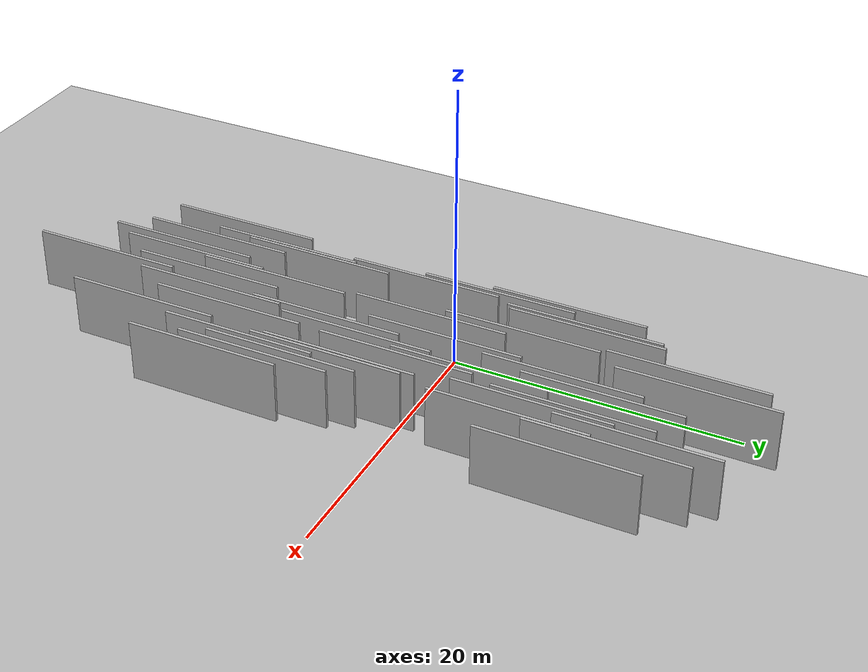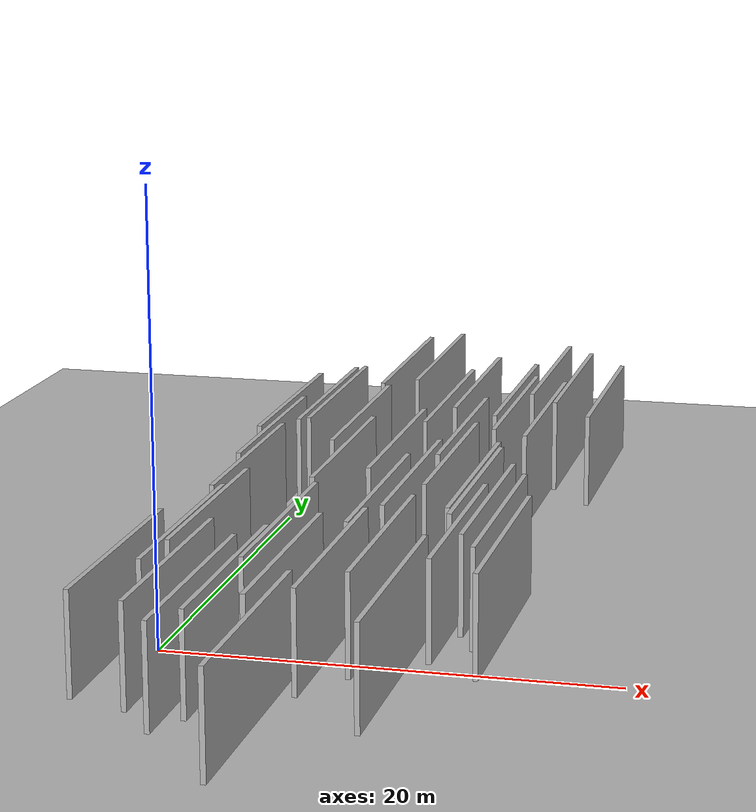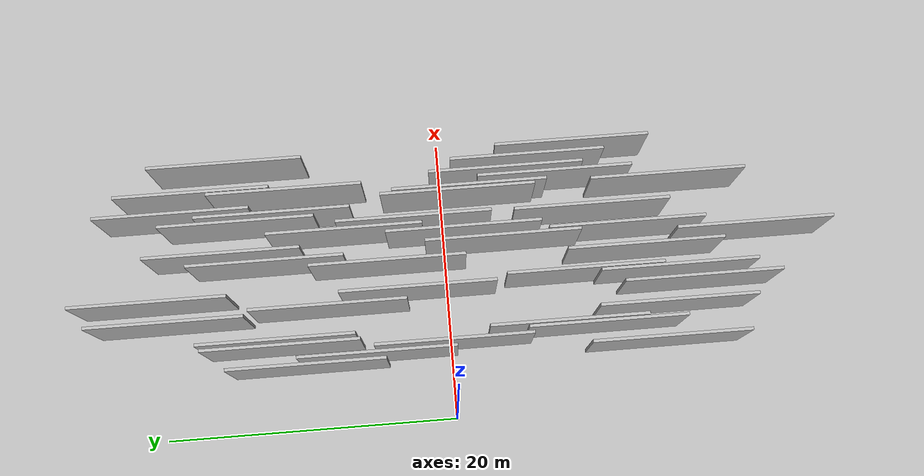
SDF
<?xml version="1.0" encoding="utf-8"?>

<sdf version="1.6">

   <world name="default">

      <gui fullscreen="0">

         <camera name="user_camera">

            <pose>-15 0 4.57585 0 0 0</pose>

            <view_controller>orbit</view_controller>

         </camera>

      </gui>

      <scene>

         <sky>

           <clouds>

             <speed>12</speed>

           </clouds>

         </sky>

         <ambient>0.4 0.4 0.4 1</ambient>

         <background>0.7 0.7 0.7 1</background>

         <shadows>1</shadows>

      </scene>

      <gravity>0 0 -9.8066</gravity>

      <magnetic_field>6e-06 2.3e-05 -4.2e-05</magnetic_field>

      <physics default="0" name="default_physics" type="ode">

         <ode>

            <solver>

               <type>quick</type>

               <iters>10</iters>

               <sor>1.0</sor>

               <use_dynamic_moi_rescaling>0</use_dynamic_moi_rescaling>

            </solver>

            <constraints>

               <cfm>0</cfm>

               <erp>0.2</erp>

               <contact_max_correcting_vel>100</contact_max_correcting_vel>

               <contact_surface_layer>0.001</contact_surface_layer>

            </constraints>

         </ode>

         <max_step_size>0.004</max_step_size>

         <real_time_factor>1</real_time_factor>

         <real_time_update_rate>250</real_time_update_rate>

      </physics>

      <light name="sun" type="directional">

         <cast_shadows>1</cast_shadows>

         <pose>0 0 10 0 0 0</pose>

         <diffuse>0.8 0.8 0.8 1</diffuse>

         <specular>0.2 0.2 0.2 1</specular>

         <attenuation>

            <range>1000</range>

            <constant>0.9</constant>

            <linear>0.01</linear>

            <quadratic>0.001</quadratic>

         </attenuation>

         <direction>-0.5 0.1 -0.9</direction>

      </light>

      <include>

         <name>ground_plane_1</name>

         <uri>model://HANNAS_ground_plane</uri>

         <pose>0 0 0  0 0 0</pose>

      </include>

      <include>

         <name>ground_plane_2</name>

         <uri>model://HANNAS_ground_plane</uri>

         <pose>100 0 0  0 0 0</pose>

      </include>

      <model name="HANNAS_wall_1">

         <static>1</static>

         <pose frame="">9.5534 3.7458 5.0 0.000000 0.000000 1.570796</pose>

         <link name="link">

            <pose frame="">0 0 2.00 0 0 0</pose>

            <collision name="collision">

               <geometry>

                  <box>

                     <size>10.00 0.2 4.00</size>

                  </box>

               </geometry>

               <max_contacts>10</max_contacts>

               <surface>

                  <contact>

                     <ode/>

                  </contact>

                  <bounce/>

                  <friction>

                     <torsional>

                        <ode/>

                     </torsional>

                     <ode/>

                  </friction>

               </surface>

            </collision>

            <visual name="visual">

               <cast_shadows>0</cast_shadows>

               <geometry>

                  <box>

                     <size>10.00 0.2 4.00</size>

                  </box>

               </geometry>

               <material>

                  <script>

                     <uri>model://HANNAS_wall/materials/scripts</uri>

                     <uri>model://HANNAS_wall/materials/textures</uri>

                     <name>vrc/HANNAS_wall</name>

                  </script>

               </material>

            </visual>

            <self_collide>0</self_collide>

            <enable_wind>0</enable_wind>

            <kinematic>0</kinematic>

         </link>

      </model>

      <model name="HANNAS_wall_2">

         <static>1</static>

         <pose frame="">4.1947 -0.1144 5.0 0.000000 0.000000 1.570796</pose>

         <link name="link">

            <pose frame="">0 0 2.00 0 0 0</pose>

            <collision name="collision">

               <geometry>

                  <box>

                     <size>10.00 0.2 4.00</size>

                  </box>

               </geometry>

               <max_contacts>10</max_contacts>

               <surface>

                  <contact>

                     <ode/>

                  </contact>

                  <bounce/>

                  <friction>

                     <torsional>

                        <ode/>

                     </torsional>

                     <ode/>

                  </friction>

               </surface>

            </collision>

            <visual name="visual">

               <cast_shadows>0</cast_shadows>

               <geometry>

                  <box>

                     <size>10.00 0.2 4.00</size>

                  </box>

               </geometry>

               <material>

                  <script>

                     <uri>model://HANNAS_wall/materials/scripts</uri>

                     <uri>model://HANNAS_wall/materials/textures</uri>

                     <name>vrc/HANNAS_wall</name>

                  </script>

               </material>

            </visual>

            <self_collide>0</self_collide>

            <enable_wind>0</enable_wind>

            <kinematic>0</kinematic>

         </link>

      </model>

      <model name="HANNAS_wall_3">

         <static>1</static>

         <pose frame="">13.8766 -14.6473 5.0 0.000000 0.000000 1.570796</pose>

         <link name="link">

            <pose frame="">0 0 2.00 0 0 0</pose>

            <collision name="collision">

               <geometry>

                  <box>

                     <size>10.00 0.2 4.00</size>

                  </box>

               </geometry>

               <max_contacts>10</max_contacts>

               <surface>

                  <contact>

                     <ode/>

                  </contact>

                  <bounce/>

                  <friction>

                     <torsional>

                        <ode/>

                     </torsional>

                     <ode/>

                  </friction>

               </surface>

            </collision>

            <visual name="visual">

               <cast_shadows>0</cast_shadows>

               <geometry>

                  <box>

                     <size>10.00 0.2 4.00</size>

                  </box>

               </geometry>

               <material>

                  <script>

                     <uri>model://HANNAS_wall/materials/scripts</uri>

                     <uri>model://HANNAS_wall/materials/textures</uri>

                     <name>vrc/HANNAS_wall</name>

                  </script>

               </material>

            </visual>

            <self_collide>0</self_collide>

            <enable_wind>0</enable_wind>

            <kinematic>0</kinematic>

         </link>

      </model>

      <model name="HANNAS_wall_4">

         <static>1</static>

         <pose frame="">12.8027 13.2292 5.0 0.000000 0.000000 1.570796</pose>

         <link name="link">

            <pose frame="">0 0 2.00 0 0 0</pose>

            <collision name="collision">

               <geometry>

                  <box>

                     <size>10.00 0.2 4.00</size>

                  </box>

               </geometry>

               <max_contacts>10</max_contacts>

               <surface>

                  <contact>

                     <ode/>

                  </contact>

                  <bounce/>

                  <friction>

                     <torsional>

                        <ode/>

                     </torsional>

                     <ode/>

                  </friction>

               </surface>

            </collision>

            <visual name="visual">

               <cast_shadows>0</cast_shadows>

               <geometry>

                  <box>

                     <size>10.00 0.2 4.00</size>

                  </box>

               </geometry>

               <material>

                  <script>

                     <uri>model://HANNAS_wall/materials/scripts</uri>

                     <uri>model://HANNAS_wall/materials/textures</uri>

                     <name>vrc/HANNAS_wall</name>

                  </script>

               </material>

            </visual>

            <self_collide>0</self_collide>

            <enable_wind>0</enable_wind>

            <kinematic>0</kinematic>

         </link>

      </model>

      <model name="HANNAS_wall_5">

         <static>1</static>

         <pose frame="">10.1841 -19.8074 5.0 0.000000 0.000000 1.570796</pose>

         <link name="link">

            <pose frame="">0 0 2.00 0 0 0</pose>

            <collision name="collision">

               <geometry>

                  <box>

                     <size>10.00 0.2 4.00</size>

                  </box>

               </geometry>

               <max_contacts>10</max_contacts>

               <surface>

                  <contact>

                     <ode/>

                  </contact>

                  <bounce/>

                  <friction>

                     <torsional>

                        <ode/>

                     </torsional>

                     <ode/>

                  </friction>

               </surface>

            </collision>

            <visual name="visual">

               <cast_shadows>0</cast_shadows>

               <geometry>

                  <box>

                     <size>10.00 0.2 4.00</size>

                  </box>

               </geometry>

               <material>

                  <script>

                     <uri>model://HANNAS_wall/materials/scripts</uri>

                     <uri>model://HANNAS_wall/materials/textures</uri>

                     <name>vrc/HANNAS_wall</name>

                  </script>

               </material>

            </visual>

            <self_collide>0</self_collide>

            <enable_wind>0</enable_wind>

            <kinematic>0</kinematic>

         </link>

      </model>

      <model name="HANNAS_wall_6">

         <static>1</static>

         <pose frame="">7.9940 18.9209 5.0 0.000000 0.000000 1.570796</pose>

         <link name="link">

            <pose frame="">0 0 2.00 0 0 0</pose>

            <collision name="collision">

               <geometry>

                  <box>

                     <size>10.00 0.2 4.00</size>

                  </box>

               </geometry>

               <max_contacts>10</max_contacts>

               <surface>

                  <contact>

                     <ode/>

                  </contact>

                  <bounce/>

                  <friction>

                     <torsional>

                        <ode/>

                     </torsional>

                     <ode/>

                  </friction>

               </surface>

            </collision>

            <visual name="visual">

               <cast_shadows>0</cast_shadows>

               <geometry>

                  <box>

                     <size>10.00 0.2 4.00</size>

                  </box>

               </geometry>

               <material>

                  <script>

                     <uri>model://HANNAS_wall/materials/scripts</uri>

                     <uri>model://HANNAS_wall/materials/textures</uri>

                     <name>vrc/HANNAS_wall</name>

                  </script>

               </material>

            </visual>

            <self_collide>0</self_collide>

            <enable_wind>0</enable_wind>

            <kinematic>0</kinematic>

         </link>

      </model>

      <model name="HANNAS_wall_7">

         <static>1</static>

         <pose frame="">5.0252 10.9906 5.0 0.000000 0.000000 1.570796</pose>

         <link name="link">

            <pose frame="">0 0 2.00 0 0 0</pose>

            <collision name="collision">

               <geometry>

                  <box>

                     <size>10.00 0.2 4.00</size>

                  </box>

               </geometry>

               <max_contacts>10</max_contacts>

               <surface>

                  <contact>

                     <ode/>

                  </contact>

                  <bounce/>

                  <friction>

                     <torsional>

                        <ode/>

                     </torsional>

                     <ode/>

                  </friction>

               </surface>

            </collision>

            <visual name="visual">

               <cast_shadows>0</cast_shadows>

               <geometry>

                  <box>

                     <size>10.00 0.2 4.00</size>

                  </box>

               </geometry>

               <material>

                  <script>

                     <uri>model://HANNAS_wall/materials/scripts</uri>

                     <uri>model://HANNAS_wall/materials/textures</uri>

                     <name>vrc/HANNAS_wall</name>

                  </script>

               </material>

            </visual>

            <self_collide>0</self_collide>

            <enable_wind>0</enable_wind>

            <kinematic>0</kinematic>

         </link>

      </model>

      <model name="HANNAS_wall_8">

         <static>1</static>

         <pose frame="">8.0537 -8.7369 5.0 0.000000 0.000000 1.570796</pose>

         <link name="link">

            <pose frame="">0 0 2.00 0 0 0</pose>

            <collision name="collision">

               <geometry>

                  <box>

                     <size>10.00 0.2 4.00</size>

                  </box>

               </geometry>

               <max_contacts>10</max_contacts>

               <surface>

                  <contact>

                     <ode/>

                  </contact>

                  <bounce/>

                  <friction>

                     <torsional>

                        <ode/>

                     </torsional>

                     <ode/>

                  </friction>

               </surface>

            </collision>

            <visual name="visual">

               <cast_shadows>0</cast_shadows>

               <geometry>

                  <box>

                     <size>10.00 0.2 4.00</size>

                  </box>

               </geometry>

               <material>

                  <script>

                     <uri>model://HANNAS_wall/materials/scripts</uri>

                     <uri>model://HANNAS_wall/materials/textures</uri>

                     <name>vrc/HANNAS_wall</name>

                  </script>

               </material>

            </visual>

            <self_collide>0</self_collide>

            <enable_wind>0</enable_wind>

            <kinematic>0</kinematic>

         </link>

      </model>

      <model name="HANNAS_wall_9">

         <static>1</static>

         <pose frame="">10.6077 -3.7105 5.0 0.000000 0.000000 1.570796</pose>

         <link name="link">

            <pose frame="">0 0 2.00 0 0 0</pose>

            <collision name="collision">

               <geometry>

                  <box>

                     <size>10.00 0.2 4.00</size>

                  </box>

               </geometry>

               <max_contacts>10</max_contacts>

               <surface>

                  <contact>

                     <ode/>

                  </contact>

                  <bounce/>

                  <friction>

                     <torsional>

                        <ode/>

                     </torsional>

                     <ode/>

                  </friction>

               </surface>

            </collision>

            <visual name="visual">

               <cast_shadows>0</cast_shadows>

               <geometry>

                  <box>

                     <size>10.00 0.2 4.00</size>

                  </box>

               </geometry>

               <material>

                  <script>

                     <uri>model://HANNAS_wall/materials/scripts</uri>

                     <uri>model://HANNAS_wall/materials/textures</uri>

                     <name>vrc/HANNAS_wall</name>

                  </script>

               </material>

            </visual>

            <self_collide>0</self_collide>

            <enable_wind>0</enable_wind>

            <kinematic>0</kinematic>

         </link>

      </model>

      <model name="HANNAS_wall_10">

         <static>1</static>

         <pose frame="">15.8843 -5.7240 5.0 0.000000 0.000000 1.570796</pose>

         <link name="link">

            <pose frame="">0 0 2.00 0 0 0</pose>

            <collision name="collision">

               <geometry>

                  <box>

                     <size>10.00 0.2 4.00</size>

                  </box>

               </geometry>

               <max_contacts>10</max_contacts>

               <surface>

                  <contact>

                     <ode/>

                  </contact>

                  <bounce/>

                  <friction>

                     <torsional>

                        <ode/>

                     </torsional>

                     <ode/>

                  </friction>

               </surface>

            </collision>

            <visual name="visual">

               <cast_shadows>0</cast_shadows>

               <geometry>

                  <box>

                     <size>10.00 0.2 4.00</size>

                  </box>

               </geometry>

               <material>

                  <script>

                     <uri>model://HANNAS_wall/materials/scripts</uri>

                     <uri>model://HANNAS_wall/materials/textures</uri>

                     <name>vrc/HANNAS_wall</name>

                  </script>

               </material>

            </visual>

            <self_collide>0</self_collide>

            <enable_wind>0</enable_wind>

            <kinematic>0</kinematic>

         </link>

      </model>

      <model name="HANNAS_wall_11">

         <static>1</static>

         <pose frame="">4.5751 -9.7966 5.0 0.000000 0.000000 1.570796</pose>

         <link name="link">

            <pose frame="">0 0 2.00 0 0 0</pose>

            <collision name="collision">

               <geometry>

                  <box>

                     <size>10.00 0.2 4.00</size>

                  </box>

               </geometry>

               <max_contacts>10</max_contacts>

               <surface>

                  <contact>

                     <ode/>

                  </contact>

                  <bounce/>

                  <friction>

                     <torsional>

                        <ode/>

                     </torsional>

                     <ode/>

                  </friction>

               </surface>

            </collision>

            <visual name="visual">

               <cast_shadows>0</cast_shadows>

               <geometry>

                  <box>

                     <size>10.00 0.2 4.00</size>

                  </box>

               </geometry>

               <material>

                  <script>

                     <uri>model://HANNAS_wall/materials/scripts</uri>

                     <uri>model://HANNAS_wall/materials/textures</uri>

                     <name>vrc/HANNAS_wall</name>

                  </script>

               </material>

            </visual>

            <self_collide>0</self_collide>

            <enable_wind>0</enable_wind>

            <kinematic>0</kinematic>

         </link>

      </model>

      <model name="HANNAS_wall_12">

         <static>1</static>

         <pose frame="">11.8149 6.3750 5.0 0.000000 0.000000 1.570796</pose>

         <link name="link">

            <pose frame="">0 0 2.00 0 0 0</pose>

            <collision name="collision">

               <geometry>

                  <box>

                     <size>10.00 0.2 4.00</size>

                  </box>

               </geometry>

               <max_contacts>10</max_contacts>

               <surface>

                  <contact>

                     <ode/>

                  </contact>

                  <bounce/>

                  <friction>

                     <torsional>

                        <ode/>

                     </torsional>

                     <ode/>

                  </friction>

               </surface>

            </collision>

            <visual name="visual">

               <cast_shadows>0</cast_shadows>

               <geometry>

                  <box>

                     <size>10.00 0.2 4.00</size>

                  </box>

               </geometry>

               <material>

                  <script>

                     <uri>model://HANNAS_wall/materials/scripts</uri>

                     <uri>model://HANNAS_wall/materials/textures</uri>

                     <name>vrc/HANNAS_wall</name>

                  </script>

               </material>

            </visual>

            <self_collide>0</self_collide>

            <enable_wind>0</enable_wind>

            <kinematic>0</kinematic>

         </link>

      </model>

      <model name="HANNAS_wall_13">

         <static>1</static>

         <pose frame="">12.2976 1.8911 5.0 0.000000 0.000000 1.570796</pose>

         <link name="link">

            <pose frame="">0 0 2.00 0 0 0</pose>

            <collision name="collision">

               <geometry>

                  <box>

                     <size>10.00 0.2 4.00</size>

                  </box>

               </geometry>

               <max_contacts>10</max_contacts>

               <surface>

                  <contact>

                     <ode/>

                  </contact>

                  <bounce/>

                  <friction>

                     <torsional>

                        <ode/>

                     </torsional>

                     <ode/>

                  </friction>

               </surface>

            </collision>

            <visual name="visual">

               <cast_shadows>0</cast_shadows>

               <geometry>

                  <box>

                     <size>10.00 0.2 4.00</size>

                  </box>

               </geometry>

               <material>

                  <script>

                     <uri>model://HANNAS_wall/materials/scripts</uri>

                     <uri>model://HANNAS_wall/materials/textures</uri>

                     <name>vrc/HANNAS_wall</name>

                  </script>

               </material>

            </visual>

            <self_collide>0</self_collide>

            <enable_wind>0</enable_wind>

            <kinematic>0</kinematic>

         </link>

      </model>

      <model name="HANNAS_wall_14">

         <static>1</static>

         <pose frame="">7.0033 -16.1075 5.0 0.000000 0.000000 1.570796</pose>

         <link name="link">

            <pose frame="">0 0 2.00 0 0 0</pose>

            <collision name="collision">

               <geometry>

                  <box>

                     <size>10.00 0.2 4.00</size>

                  </box>

               </geometry>

               <max_contacts>10</max_contacts>

               <surface>

                  <contact>

                     <ode/>

                  </contact>

                  <bounce/>

                  <friction>

                     <torsional>

                        <ode/>

                     </torsional>

                     <ode/>

                  </friction>

               </surface>

            </collision>

            <visual name="visual">

               <cast_shadows>0</cast_shadows>

               <geometry>

                  <box>

                     <size>10.00 0.2 4.00</size>

                  </box>

               </geometry>

               <material>

                  <script>

                     <uri>model://HANNAS_wall/materials/scripts</uri>

                     <uri>model://HANNAS_wall/materials/textures</uri>

                     <name>vrc/HANNAS_wall</name>

                  </script>

               </material>

            </visual>

            <self_collide>0</self_collide>

            <enable_wind>0</enable_wind>

            <kinematic>0</kinematic>

         </link>

      </model>

      <model name="HANNAS_wall_15">

         <static>1</static>

         <pose frame="">14.6371 -7.3992 5.0 0.000000 0.000000 1.570796</pose>

         <link name="link">

            <pose frame="">0 0 2.00 0 0 0</pose>

            <collision name="collision">

               <geometry>

                  <box>

                     <size>10.00 0.2 4.00</size>

                  </box>

               </geometry>

               <max_contacts>10</max_contacts>

               <surface>

                  <contact>

                     <ode/>

                  </contact>

                  <bounce/>

                  <friction>

                     <torsional>

                        <ode/>

                     </torsional>

                     <ode/>

                  </friction>

               </surface>

            </collision>

            <visual name="visual">

               <cast_shadows>0</cast_shadows>

               <geometry>

                  <box>

                     <size>10.00 0.2 4.00</size>

                  </box>

               </geometry>

               <material>

                  <script>

                     <uri>model://HANNAS_wall/materials/scripts</uri>

                     <uri>model://HANNAS_wall/materials/textures</uri>

                     <name>vrc/HANNAS_wall</name>

                  </script>

               </material>

            </visual>

            <self_collide>0</self_collide>

            <enable_wind>0</enable_wind>

            <kinematic>0</kinematic>

         </link>

      </model>

      <model name="HANNAS_wall_16">

         <static>1</static>

         <pose frame="">11.3830 -1.2493 5.0 0.000000 0.000000 1.570796</pose>

         <link name="link">

            <pose frame="">0 0 2.00 0 0 0</pose>

            <collision name="collision">

               <geometry>

                  <box>

                     <size>10.00 0.2 4.00</size>

                  </box>

               </geometry>

               <max_contacts>10</max_contacts>

               <surface>

                  <contact>

                     <ode/>

                  </contact>

                  <bounce/>

                  <friction>

                     <torsional>

                        <ode/>

                     </torsional>

                     <ode/>

                  </friction>

               </surface>

            </collision>

            <visual name="visual">

               <cast_shadows>0</cast_shadows>

               <geometry>

                  <box>

                     <size>10.00 0.2 4.00</size>

                  </box>

               </geometry>

               <material>

                  <script>

                     <uri>model://HANNAS_wall/materials/scripts</uri>

                     <uri>model://HANNAS_wall/materials/textures</uri>

                     <name>vrc/HANNAS_wall</name>

                  </script>

               </material>

            </visual>

            <self_collide>0</self_collide>

            <enable_wind>0</enable_wind>

            <kinematic>0</kinematic>

         </link>

      </model>

      <model name="HANNAS_wall_17">

         <static>1</static>

         <pose frame="">12.2150 -9.5600 5.0 0.000000 0.000000 1.570796</pose>

         <link name="link">

            <pose frame="">0 0 2.00 0 0 0</pose>

            <collision name="collision">

               <geometry>

                  <box>

                     <size>10.00 0.2 4.00</size>

                  </box>

               </geometry>

               <max_contacts>10</max_contacts>

               <surface>

                  <contact>

                     <ode/>

                  </contact>

                  <bounce/>

                  <friction>

                     <torsional>

                        <ode/>

                     </torsional>

                     <ode/>

                  </friction>

               </surface>

            </collision>

            <visual name="visual">

               <cast_shadows>0</cast_shadows>

               <geometry>

                  <box>

                     <size>10.00 0.2 4.00</size>

                  </box>

               </geometry>

               <material>

                  <script>

                     <uri>model://HANNAS_wall/materials/scripts</uri>

                     <uri>model://HANNAS_wall/materials/textures</uri>

                     <name>vrc/HANNAS_wall</name>

                  </script>

               </material>

            </visual>

            <self_collide>0</self_collide>

            <enable_wind>0</enable_wind>

            <kinematic>0</kinematic>

         </link>

      </model>

      <model name="HANNAS_wall_18">

         <static>1</static>

         <pose frame="">6.9834 7.6423 5.0 0.000000 0.000000 1.570796</pose>

         <link name="link">

            <pose frame="">0 0 2.00 0 0 0</pose>

            <collision name="collision">

               <geometry>

                  <box>

                     <size>10.00 0.2 4.00</size>

                  </box>

               </geometry>

               <max_contacts>10</max_contacts>

               <surface>

                  <contact>

                     <ode/>

                  </contact>

                  <bounce/>

                  <friction>

                     <torsional>

                        <ode/>

                     </torsional>

                     <ode/>

                  </friction>

               </surface>

            </collision>

            <visual name="visual">

               <cast_shadows>0</cast_shadows>

               <geometry>

                  <box>

                     <size>10.00 0.2 4.00</size>

                  </box>

               </geometry>

               <material>

                  <script>

                     <uri>model://HANNAS_wall/materials/scripts</uri>

                     <uri>model://HANNAS_wall/materials/textures</uri>

                     <name>vrc/HANNAS_wall</name>

                  </script>

               </material>

            </visual>

            <self_collide>0</self_collide>

            <enable_wind>0</enable_wind>

            <kinematic>0</kinematic>

         </link>

      </model>

      <model name="HANNAS_wall_19">

         <static>1</static>

         <pose frame="">16.6287 -8.6977 5.0 0.000000 0.000000 1.570796</pose>

         <link name="link">

            <pose frame="">0 0 2.00 0 0 0</pose>

            <collision name="collision">

               <geometry>

                  <box>

                     <size>10.00 0.2 4.00</size>

                  </box>

               </geometry>

               <max_contacts>10</max_contacts>

               <surface>

                  <contact>

                     <ode/>

                  </contact>

                  <bounce/>

                  <friction>

                     <torsional>

                        <ode/>

                     </torsional>

                     <ode/>

                  </friction>

               </surface>

            </collision>

            <visual name="visual">

               <cast_shadows>0</cast_shadows>

               <geometry>

                  <box>

                     <size>10.00 0.2 4.00</size>

                  </box>

               </geometry>

               <material>

                  <script>

                     <uri>model://HANNAS_wall/materials/scripts</uri>

                     <uri>model://HANNAS_wall/materials/textures</uri>

                     <name>vrc/HANNAS_wall</name>

                  </script>

               </material>

            </visual>

            <self_collide>0</self_collide>

            <enable_wind>0</enable_wind>

            <kinematic>0</kinematic>

         </link>

      </model>

      <model name="HANNAS_wall_20">

         <static>1</static>

         <pose frame="">14.9559 16.0531 5.0 0.000000 0.000000 1.570796</pose>

         <link name="link">

            <pose frame="">0 0 2.00 0 0 0</pose>

            <collision name="collision">

               <geometry>

                  <box>

                     <size>10.00 0.2 4.00</size>

                  </box>

               </geometry>

               <max_contacts>10</max_contacts>

               <surface>

                  <contact>

                     <ode/>

                  </contact>

                  <bounce/>

                  <friction>

                     <torsional>

                        <ode/>

                     </torsional>

                     <ode/>

                  </friction>

               </surface>

            </collision>

            <visual name="visual">

               <cast_shadows>0</cast_shadows>

               <geometry>

                  <box>

                     <size>10.00 0.2 4.00</size>

                  </box>

               </geometry>

               <material>

                  <script>

                     <uri>model://HANNAS_wall/materials/scripts</uri>

                     <uri>model://HANNAS_wall/materials/textures</uri>

                     <name>vrc/HANNAS_wall</name>

                  </script>

               </material>

            </visual>

            <self_collide>0</self_collide>

            <enable_wind>0</enable_wind>

            <kinematic>0</kinematic>

         </link>

      </model>

      <model name="HANNAS_wall_21">

         <static>1</static>

         <pose frame="">14.7286 10.0912 5.0 0.000000 0.000000 1.570796</pose>

         <link name="link">

            <pose frame="">0 0 2.00 0 0 0</pose>

            <collision name="collision">

               <geometry>

                  <box>

                     <size>10.00 0.2 4.00</size>

                  </box>

               </geometry>

               <max_contacts>10</max_contacts>

               <surface>

                  <contact>

                     <ode/>

                  </contact>

                  <bounce/>

                  <friction>

                     <torsional>

                        <ode/>

                     </torsional>

                     <ode/>

                  </friction>

               </surface>

            </collision>

            <visual name="visual">

               <cast_shadows>0</cast_shadows>

               <geometry>

                  <box>

                     <size>10.00 0.2 4.00</size>

                  </box>

               </geometry>

               <material>

                  <script>

                     <uri>model://HANNAS_wall/materials/scripts</uri>

                     <uri>model://HANNAS_wall/materials/textures</uri>

                     <name>vrc/HANNAS_wall</name>

                  </script>

               </material>

            </visual>

            <self_collide>0</self_collide>

            <enable_wind>0</enable_wind>

            <kinematic>0</kinematic>

         </link>

      </model>

      <model name="HANNAS_wall_22">

         <static>1</static>

         <pose frame="">6.6278 17.8855 5.0 0.000000 0.000000 1.570796</pose>

         <link name="link">

            <pose frame="">0 0 2.00 0 0 0</pose>

            <collision name="collision">

               <geometry>

                  <box>

                     <size>10.00 0.2 4.00</size>

                  </box>

               </geometry>

               <max_contacts>10</max_contacts>

               <surface>

                  <contact>

                     <ode/>

                  </contact>

                  <bounce/>

                  <friction>

                     <torsional>

                        <ode/>

                     </torsional>

                     <ode/>

                  </friction>

               </surface>

            </collision>

            <visual name="visual">

               <cast_shadows>0</cast_shadows>

               <geometry>

                  <box>

                     <size>10.00 0.2 4.00</size>

                  </box>

               </geometry>

               <material>

                  <script>

                     <uri>model://HANNAS_wall/materials/scripts</uri>

                     <uri>model://HANNAS_wall/materials/textures</uri>

                     <name>vrc/HANNAS_wall</name>

                  </script>

               </material>

            </visual>

            <self_collide>0</self_collide>

            <enable_wind>0</enable_wind>

            <kinematic>0</kinematic>

         </link>

      </model>

      <model name="HANNAS_wall_23">

         <static>1</static>

         <pose frame="">13.8802 -1.0498 5.0 0.000000 0.000000 1.570796</pose>

         <link name="link">

            <pose frame="">0 0 2.00 0 0 0</pose>

            <collision name="collision">

               <geometry>

                  <box>

                     <size>10.00 0.2 4.00</size>

                  </box>

               </geometry>

               <max_contacts>10</max_contacts>

               <surface>

                  <contact>

                     <ode/>

                  </contact>

                  <bounce/>

                  <friction>

                     <torsional>

                        <ode/>

                     </torsional>

                     <ode/>

                  </friction>

               </surface>

            </collision>

            <visual name="visual">

               <cast_shadows>0</cast_shadows>

               <geometry>

                  <box>

                     <size>10.00 0.2 4.00</size>

                  </box>

               </geometry>

               <material>

                  <script>

                     <uri>model://HANNAS_wall/materials/scripts</uri>

                     <uri>model://HANNAS_wall/materials/textures</uri>

                     <name>vrc/HANNAS_wall</name>

                  </script>

               </material>

            </visual>

            <self_collide>0</self_collide>

            <enable_wind>0</enable_wind>

            <kinematic>0</kinematic>

         </link>

      </model>

      <model name="HANNAS_wall_24">

         <static>1</static>

         <pose frame="">3.3394 9.1635 5.0 0.000000 0.000000 1.570796</pose>

         <link name="link">

            <pose frame="">0 0 2.00 0 0 0</pose>

            <collision name="collision">

               <geometry>

                  <box>

                     <size>10.00 0.2 4.00</size>

                  </box>

               </geometry>

               <max_contacts>10</max_contacts>

               <surface>

                  <contact>

                     <ode/>

                  </contact>

                  <bounce/>

                  <friction>

                     <torsional>

                        <ode/>

                     </torsional>

                     <ode/>

                  </friction>

               </surface>

            </collision>

            <visual name="visual">

               <cast_shadows>0</cast_shadows>

               <geometry>

                  <box>

                     <size>10.00 0.2 4.00</size>

                  </box>

               </geometry>

               <material>

                  <script>

                     <uri>model://HANNAS_wall/materials/scripts</uri>

                     <uri>model://HANNAS_wall/materials/textures</uri>

                     <name>vrc/HANNAS_wall</name>

                  </script>

               </material>

            </visual>

            <self_collide>0</self_collide>

            <enable_wind>0</enable_wind>

            <kinematic>0</kinematic>

         </link>

      </model>

      <model name="HANNAS_wall_25">

         <static>1</static>

         <pose frame="">16.7830 13.8803 5.0 0.000000 0.000000 1.570796</pose>

         <link name="link">

            <pose frame="">0 0 2.00 0 0 0</pose>

            <collision name="collision">

               <geometry>

                  <box>

                     <size>10.00 0.2 4.00</size>

                  </box>

               </geometry>

               <max_contacts>10</max_contacts>

               <surface>

                  <contact>

                     <ode/>

                  </contact>

                  <bounce/>

                  <friction>

                     <torsional>

                        <ode/>

                     </torsional>

                     <ode/>

                  </friction>

               </surface>

            </collision>

            <visual name="visual">

               <cast_shadows>0</cast_shadows>

               <geometry>

                  <box>

                     <size>10.00 0.2 4.00</size>

                  </box>

               </geometry>

               <material>

                  <script>

                     <uri>model://HANNAS_wall/materials/scripts</uri>

                     <uri>model://HANNAS_wall/materials/textures</uri>

                     <name>vrc/HANNAS_wall</name>

                  </script>

               </material>

            </visual>

            <self_collide>0</self_collide>

            <enable_wind>0</enable_wind>

            <kinematic>0</kinematic>

         </link>

      </model>

      <model name="HANNAS_wall_26">

         <static>1</static>

         <pose frame="">7.7108 1.9240 5.0 0.000000 0.000000 1.570796</pose>

         <link name="link">

            <pose frame="">0 0 2.00 0 0 0</pose>

            <collision name="collision">

               <geometry>

                  <box>

                     <size>10.00 0.2 4.00</size>

                  </box>

               </geometry>

               <max_contacts>10</max_contacts>

               <surface>

                  <contact>

                     <ode/>

                  </contact>

                  <bounce/>

                  <friction>

                     <torsional>

                        <ode/>

                     </torsional>

                     <ode/>

                  </friction>

               </surface>

            </collision>

            <visual name="visual">

               <cast_shadows>0</cast_shadows>

               <geometry>

                  <box>

                     <size>10.00 0.2 4.00</size>

                  </box>

               </geometry>

               <material>

                  <script>

                     <uri>model://HANNAS_wall/materials/scripts</uri>

                     <uri>model://HANNAS_wall/materials/textures</uri>

                     <name>vrc/HANNAS_wall</name>

                  </script>

               </material>

            </visual>

            <self_collide>0</self_collide>

            <enable_wind>0</enable_wind>

            <kinematic>0</kinematic>

         </link>

      </model>

      <model name="HANNAS_wall_27">

         <static>1</static>

         <pose frame="">5.5621 -14.3646 5.0 0.000000 0.000000 1.570796</pose>

         <link name="link">

            <pose frame="">0 0 2.00 0 0 0</pose>

            <collision name="collision">

               <geometry>

                  <box>

                     <size>10.00 0.2 4.00</size>

                  </box>

               </geometry>

               <max_contacts>10</max_contacts>

               <surface>

                  <contact>

                     <ode/>

                  </contact>

                  <bounce/>

                  <friction>

                     <torsional>

                        <ode/>

                     </torsional>

                     <ode/>

                  </friction>

               </surface>

            </collision>

            <visual name="visual">

               <cast_shadows>0</cast_shadows>

               <geometry>

                  <box>

                     <size>10.00 0.2 4.00</size>

                  </box>

               </geometry>

               <material>

                  <script>

                     <uri>model://HANNAS_wall/materials/scripts</uri>

                     <uri>model://HANNAS_wall/materials/textures</uri>

                     <name>vrc/HANNAS_wall</name>

                  </script>

               </material>

            </visual>

            <self_collide>0</self_collide>

            <enable_wind>0</enable_wind>

            <kinematic>0</kinematic>

         </link>

      </model>

      <model name="HANNAS_wall_28">

         <static>1</static>

         <pose frame="">3.7804 4.7349 5.0 0.000000 0.000000 1.570796</pose>

         <link name="link">

            <pose frame="">0 0 2.00 0 0 0</pose>

            <collision name="collision">

               <geometry>

                  <box>

                     <size>10.00 0.2 4.00</size>

                  </box>

               </geometry>

               <max_contacts>10</max_contacts>

               <surface>

                  <contact>

                     <ode/>

                  </contact>

                  <bounce/>

                  <friction>

                     <torsional>

                        <ode/>

                     </torsional>

                     <ode/>

                  </friction>

               </surface>

            </collision>

            <visual name="visual">

               <cast_shadows>0</cast_shadows>

               <geometry>

                  <box>

                     <size>10.00 0.2 4.00</size>

                  </box>

               </geometry>

               <material>

                  <script>

                     <uri>model://HANNAS_wall/materials/scripts</uri>

                     <uri>model://HANNAS_wall/materials/textures</uri>

                     <name>vrc/HANNAS_wall</name>

                  </script>

               </material>

            </visual>

            <self_collide>0</self_collide>

            <enable_wind>0</enable_wind>

            <kinematic>0</kinematic>

         </link>

      </model>

      <model name="HANNAS_wall_29">

         <static>1</static>

         <pose frame="">3.3167 -13.6300 5.0 0.000000 0.000000 1.570796</pose>

         <link name="link">

            <pose frame="">0 0 2.00 0 0 0</pose>

            <collision name="collision">

               <geometry>

                  <box>

                     <size>10.00 0.2 4.00</size>

                  </box>

               </geometry>

               <max_contacts>10</max_contacts>

               <surface>

                  <contact>

                     <ode/>

                  </contact>

                  <bounce/>

                  <friction>

                     <torsional>

                        <ode/>

                     </torsional>

                     <ode/>

                  </friction>

               </surface>

            </collision>

            <visual name="visual">

               <cast_shadows>0</cast_shadows>

               <geometry>

                  <box>

                     <size>10.00 0.2 4.00</size>

                  </box>

               </geometry>

               <material>

                  <script>

                     <uri>model://HANNAS_wall/materials/scripts</uri>

                     <uri>model://HANNAS_wall/materials/textures</uri>

                     <name>vrc/HANNAS_wall</name>

                  </script>

               </material>

            </visual>

            <self_collide>0</self_collide>

            <enable_wind>0</enable_wind>

            <kinematic>0</kinematic>

         </link>

      </model>

      <model name="HANNAS_wall_30">

         <static>1</static>

         <pose frame="">10.0948 11.4869 5.0 0.000000 0.000000 1.570796</pose>

         <link name="link">

            <pose frame="">0 0 2.00 0 0 0</pose>

            <collision name="collision">

               <geometry>

                  <box>

                     <size>10.00 0.2 4.00</size>

                  </box>

               </geometry>

               <max_contacts>10</max_contacts>

               <surface>

                  <contact>

                     <ode/>

                  </contact>

                  <bounce/>

                  <friction>

                     <torsional>

                        <ode/>

                     </torsional>

                     <ode/>

                  </friction>

               </surface>

            </collision>

            <visual name="visual">

               <cast_shadows>0</cast_shadows>

               <geometry>

                  <box>

                     <size>10.00 0.2 4.00</size>

                  </box>

               </geometry>

               <material>

                  <script>

                     <uri>model://HANNAS_wall/materials/scripts</uri>

                     <uri>model://HANNAS_wall/materials/textures</uri>

                     <name>vrc/HANNAS_wall</name>

                  </script>

               </material>

            </visual>

            <self_collide>0</self_collide>

            <enable_wind>0</enable_wind>

            <kinematic>0</kinematic>

         </link>

      </model>

      <model name="HANNAS_wall_31">

         <static>1</static>

         <pose frame="">13.6685 17.3730 5.0 0.000000 0.000000 1.570796</pose>

         <link name="link">

            <pose frame="">0 0 2.00 0 0 0</pose>

            <collision name="collision">

               <geometry>

                  <box>

                     <size>10.00 0.2 4.00</size>

                  </box>

               </geometry>

               <max_contacts>10</max_contacts>

               <surface>

                  <contact>

                     <ode/>

                  </contact>

                  <bounce/>

                  <friction>

                     <torsional>

                        <ode/>

                     </torsional>

                     <ode/>

                  </friction>

               </surface>

            </collision>

            <visual name="visual">

               <cast_shadows>0</cast_shadows>

               <geometry>

                  <box>

                     <size>10.00 0.2 4.00</size>

                  </box>

               </geometry>

               <material>

                  <script>

                     <uri>model://HANNAS_wall/materials/scripts</uri>

                     <uri>model://HANNAS_wall/materials/textures</uri>

                     <name>vrc/HANNAS_wall</name>

                  </script>

               </material>

            </visual>

            <self_collide>0</self_collide>

            <enable_wind>0</enable_wind>

            <kinematic>0</kinematic>

         </link>

      </model>

      <model name="HANNAS_wall_32">

         <static>1</static>

         <pose frame="">14.1325 -1.8295 5.0 0.000000 0.000000 1.570796</pose>

         <link name="link">

            <pose frame="">0 0 2.00 0 0 0</pose>

            <collision name="collision">

               <geometry>

                  <box>

                     <size>10.00 0.2 4.00</size>

                  </box>

               </geometry>

               <max_contacts>10</max_contacts>

               <surface>

                  <contact>

                     <ode/>

                  </contact>

                  <bounce/>

                  <friction>

                     <torsional>

                        <ode/>

                     </torsional>

                     <ode/>

                  </friction>

               </surface>

            </collision>

            <visual name="visual">

               <cast_shadows>0</cast_shadows>

               <geometry>

                  <box>

                     <size>10.00 0.2 4.00</size>

                  </box>

               </geometry>

               <material>

                  <script>

                     <uri>model://HANNAS_wall/materials/scripts</uri>

                     <uri>model://HANNAS_wall/materials/textures</uri>

                     <name>vrc/HANNAS_wall</name>

                  </script>

               </material>

            </visual>

            <self_collide>0</self_collide>

            <enable_wind>0</enable_wind>

            <kinematic>0</kinematic>

         </link>

      </model>

      <model name="HANNAS_wall_33">

         <static>1</static>

         <pose frame="">7.8216 -14.6856 5.0 0.000000 0.000000 1.570796</pose>

         <link name="link">

            <pose frame="">0 0 2.00 0 0 0</pose>

            <collision name="collision">

               <geometry>

                  <box>

                     <size>10.00 0.2 4.00</size>

                  </box>

               </geometry>

               <max_contacts>10</max_contacts>

               <surface>

                  <contact>

                     <ode/>

                  </contact>

                  <bounce/>

                  <friction>

                     <torsional>

                        <ode/>

                     </torsional>

                     <ode/>

                  </friction>

               </surface>

            </collision>

            <visual name="visual">

               <cast_shadows>0</cast_shadows>

               <geometry>

                  <box>

                     <size>10.00 0.2 4.00</size>

                  </box>

               </geometry>

               <material>

                  <script>

                     <uri>model://HANNAS_wall/materials/scripts</uri>

                     <uri>model://HANNAS_wall/materials/textures</uri>

                     <name>vrc/HANNAS_wall</name>

                  </script>

               </material>

            </visual>

            <self_collide>0</self_collide>

            <enable_wind>0</enable_wind>

            <kinematic>0</kinematic>

         </link>

      </model>

      <model name="HANNAS_wall_34">

         <static>1</static>

         <pose frame="">10.8573 -11.6954 5.0 0.000000 0.000000 1.570796</pose>

         <link name="link">

            <pose frame="">0 0 2.00 0 0 0</pose>

            <collision name="collision">

               <geometry>

                  <box>

                     <size>10.00 0.2 4.00</size>

                  </box>

               </geometry>

               <max_contacts>10</max_contacts>

               <surface>

                  <contact>

                     <ode/>

                  </contact>

                  <bounce/>

                  <friction>

                     <torsional>

                        <ode/>

                     </torsional>

                     <ode/>

                  </friction>

               </surface>

            </collision>

            <visual name="visual">

               <cast_shadows>0</cast_shadows>

               <geometry>

                  <box>

                     <size>10.00 0.2 4.00</size>

                  </box>

               </geometry>

               <material>

                  <script>

                     <uri>model://HANNAS_wall/materials/scripts</uri>

                     <uri>model://HANNAS_wall/materials/textures</uri>

                     <name>vrc/HANNAS_wall</name>

                  </script>

               </material>

            </visual>

            <self_collide>0</self_collide>

            <enable_wind>0</enable_wind>

            <kinematic>0</kinematic>

         </link>

      </model>

      <model name="HANNAS_wall_35">

         <static>1</static>

         <pose frame="">4.6521 10.7062 5.0 0.000000 0.000000 1.570796</pose>

         <link name="link">

            <pose frame="">0 0 2.00 0 0 0</pose>

            <collision name="collision">

               <geometry>

                  <box>

                     <size>10.00 0.2 4.00</size>

                  </box>

               </geometry>

               <max_contacts>10</max_contacts>

               <surface>

                  <contact>

                     <ode/>

                  </contact>

                  <bounce/>

                  <friction>

                     <torsional>

                        <ode/>

                     </torsional>

                     <ode/>

                  </friction>

               </surface>

            </collision>

            <visual name="visual">

               <cast_shadows>0</cast_shadows>

               <geometry>

                  <box>

                     <size>10.00 0.2 4.00</size>

                  </box>

               </geometry>

               <material>

                  <script>

                     <uri>model://HANNAS_wall/materials/scripts</uri>

                     <uri>model://HANNAS_wall/materials/textures</uri>

                     <name>vrc/HANNAS_wall</name>

                  </script>

               </material>

            </visual>

            <self_collide>0</self_collide>

            <enable_wind>0</enable_wind>

            <kinematic>0</kinematic>

         </link>

      </model>

      <model name="HANNAS_wall_36">

         <static>1</static>

         <pose frame="">10.8034 14.2233 5.0 0.000000 0.000000 1.570796</pose>

         <link name="link">

            <pose frame="">0 0 2.00 0 0 0</pose>

            <collision name="collision">

               <geometry>

                  <box>

                     <size>10.00 0.2 4.00</size>

                  </box>

               </geometry>

               <max_contacts>10</max_contacts>

               <surface>

                  <contact>

                     <ode/>

                  </contact>

                  <bounce/>

                  <friction>

                     <torsional>

                        <ode/>

                     </torsional>

                     <ode/>

                  </friction>

               </surface>

            </collision>

            <visual name="visual">

               <cast_shadows>0</cast_shadows>

               <geometry>

                  <box>

                     <size>10.00 0.2 4.00</size>

                  </box>

               </geometry>

               <material>

                  <script>

                     <uri>model://HANNAS_wall/materials/scripts</uri>

                     <uri>model://HANNAS_wall/materials/textures</uri>

                     <name>vrc/HANNAS_wall</name>

                  </script>

               </material>

            </visual>

            <self_collide>0</self_collide>

            <enable_wind>0</enable_wind>

            <kinematic>0</kinematic>

         </link>

      </model>

      <model name="HANNAS_wall_37">

         <static>1</static>

         <pose frame="">15.1300 -4.2638 5.0 0.000000 0.000000 1.570796</pose>

         <link name="link">

            <pose frame="">0 0 2.00 0 0 0</pose>

            <collision name="collision">

               <geometry>

                  <box>

                     <size>10.00 0.2 4.00</size>

                  </box>

               </geometry>

               <max_contacts>10</max_contacts>

               <surface>

                  <contact>

                     <ode/>

                  </contact>

                  <bounce/>

                  <friction>

                     <torsional>

                        <ode/>

                     </torsional>

                     <ode/>

                  </friction>

               </surface>

            </collision>

            <visual name="visual">

               <cast_shadows>0</cast_shadows>

               <geometry>

                  <box>

                     <size>10.00 0.2 4.00</size>

                  </box>

               </geometry>

               <material>

                  <script>

                     <uri>model://HANNAS_wall/materials/scripts</uri>

                     <uri>model://HANNAS_wall/materials/textures</uri>

                     <name>vrc/HANNAS_wall</name>

                  </script>

               </material>

            </visual>

            <self_collide>0</self_collide>

            <enable_wind>0</enable_wind>

            <kinematic>0</kinematic>

         </link>

      </model>

      <model name="HANNAS_wall_38">

         <static>1</static>

         <pose frame="">9.3544 -12.7298 5.0 0.000000 0.000000 1.570796</pose>

         <link name="link">

            <pose frame="">0 0 2.00 0 0 0</pose>

            <collision name="collision">

               <geometry>

                  <box>

                     <size>10.00 0.2 4.00</size>

                  </box>

               </geometry>

               <max_contacts>10</max_contacts>

               <surface>

                  <contact>

                     <ode/>

                  </contact>

                  <bounce/>

                  <friction>

                     <torsional>

                        <ode/>

                     </torsional>

                     <ode/>

                  </friction>

               </surface>

            </collision>

            <visual name="visual">

               <cast_shadows>0</cast_shadows>

               <geometry>

                  <box>

                     <size>10.00 0.2 4.00</size>

                  </box>

               </geometry>

               <material>

                  <script>

                     <uri>model://HANNAS_wall/materials/scripts</uri>

                     <uri>model://HANNAS_wall/materials/textures</uri>

                     <name>vrc/HANNAS_wall</name>

                  </script>

               </material>

            </visual>

            <self_collide>0</self_collide>

            <enable_wind>0</enable_wind>

            <kinematic>0</kinematic>

         </link>

      </model>

      <model name="HANNAS_wall_39">

         <static>1</static>

         <pose frame="">4.8169 -7.3758 5.0 0.000000 0.000000 1.570796</pose>

         <link name="link">

            <pose frame="">0 0 2.00 0 0 0</pose>

            <collision name="collision">

               <geometry>

                  <box>

                     <size>10.00 0.2 4.00</size>

                  </box>

               </geometry>

               <max_contacts>10</max_contacts>

               <surface>

                  <contact>

                     <ode/>

                  </contact>

                  <bounce/>

                  <friction>

                     <torsional>

                        <ode/>

                     </torsional>

                     <ode/>

                  </friction>

               </surface>

            </collision>

            <visual name="visual">

               <cast_shadows>0</cast_shadows>

               <geometry>

                  <box>

                     <size>10.00 0.2 4.00</size>

                  </box>

               </geometry>

               <material>

                  <script>

                     <uri>model://HANNAS_wall/materials/scripts</uri>

                     <uri>model://HANNAS_wall/materials/textures</uri>

                     <name>vrc/HANNAS_wall</name>

                  </script>

               </material>

            </visual>

            <self_collide>0</self_collide>

            <enable_wind>0</enable_wind>

            <kinematic>0</kinematic>

         </link>

      </model>

      <model name="HANNAS_wall_40">

         <static>1</static>

         <pose frame="">13.2415 10.9192 5.0 0.000000 0.000000 1.570796</pose>

         <link name="link">

            <pose frame="">0 0 2.00 0 0 0</pose>

            <collision name="collision">

               <geometry>

                  <box>

                     <size>10.00 0.2 4.00</size>

                  </box>

               </geometry>

               <max_contacts>10</max_contacts>

               <surface>

                  <contact>

                     <ode/>

                  </contact>

                  <bounce/>

                  <friction>

                     <torsional>

                        <ode/>

                     </torsional>

                     <ode/>

                  </friction>

               </surface>

            </collision>

            <visual name="visual">

               <cast_shadows>0</cast_shadows>

               <geometry>

                  <box>

                     <size>10.00 0.2 4.00</size>

                  </box>

               </geometry>

               <material>

                  <script>

                     <uri>model://HANNAS_wall/materials/scripts</uri>

                     <uri>model://HANNAS_wall/materials/textures</uri>

                     <name>vrc/HANNAS_wall</name>

                  </script>

               </material>

            </visual>

            <self_collide>0</self_collide>

            <enable_wind>0</enable_wind>

            <kinematic>0</kinematic>

         </link>

      </model>

   </world>

</sdf>
